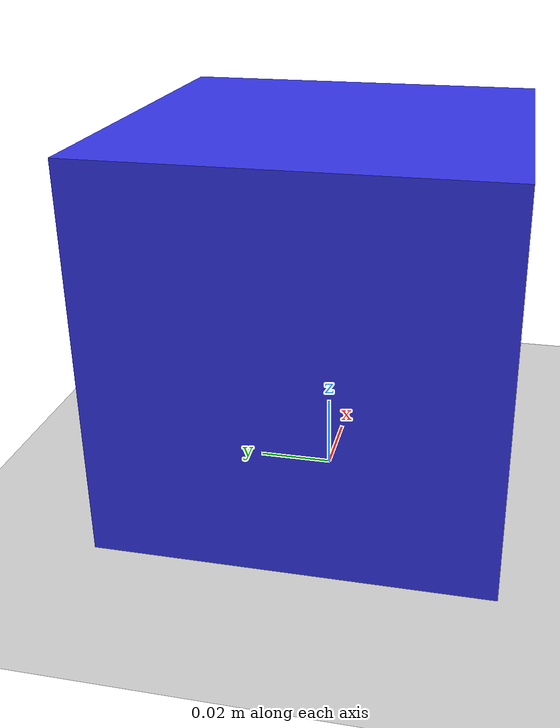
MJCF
<mujoco model="boxpush">
    <compiler angle="degree" coordinate="local"/>
    <option timestep="0.02"/>

    <default>
        <geom type="box" size="0.05 0.05 0.05" rgba="0.3 0.6 0.8 1"/>
        <joint damping="5"/>
    </default>

    <worldbody>
    #ground plane
        <geom name="ground" type="plane" size="5 5 0.1" pos="0 0 0" rgba="0.8 0.8 0.8 1"/>
    #box to push
        <body name="box" pos="0 0 0.05">
            <joint name="slider_x" type="slide" axis="1 0 0" limited="false"/>
            <geom name="box_geom" size="0.05 0.05 0.05" rgba="0.2 0.2 0.9 1" contype="0" conaffinity="0"/>
        </body>

    #target marker
    <body name="target" mocap="true" pos="0 0 0.05">
        <geom name="target_geom" type="cylinder" size="0.03 0.001" rgba="1.0 0.0 0.0 0.5"/>
    </body>

</worldbody>

<actuator>
    <motor name="box_motor" joint="slider_x" gear="1.0"/>
</actuator>

</mujoco>
